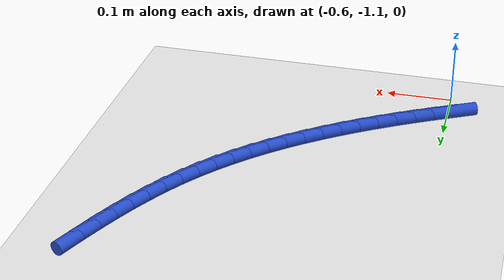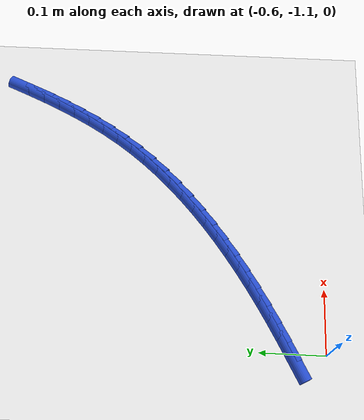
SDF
<sdf version="1.6">
 <world name="default">
  <model name="ground_plane">
   <static>1</static>
   <link name="link">
    <collision name="collision">
     <geometry><plane><normal>0 0 1</normal><size>100 100</size></plane></geometry>
     <surface><friction><ode><mu>100</mu><mu2>50</mu2></ode></friction></surface>
    </collision>
    <visual name="visual">
     <cast_shadows>0</cast_shadows>
     <geometry><plane><normal>0 0 1</normal><size>100 100</size></plane></geometry>
     <material>
      <script><uri>file://media/materials/scripts/gazebo.material</uri><name>Gazebo/WhiteGlow</name></script>
     </material>
    </visual>
   </link>
  </model>
  <model name="line">
   <link name="link_217">
    <pose>-0.6053727925323136 -1.0482092522711892 0.01 0 1.57 0.488285227125159</pose>
    <collision name="collision">
     <geometry><cylinder><radius>0.01</radius><length>0.08</length></cylinder></geometry>
    </collision>
    <visual name="visual">
     <material>
      <script><name>Gazebo/Blue</name><uri>file://media/materials/scripts/gazebo.material</uri></script>
     </material>
     <geometry><cylinder><radius>0.01</radius><length>0.08</length></cylinder></geometry>
    </visual>
   </link>
   <link name="link_218">
    <pose>-0.5788393921331688 -1.0341150409435818 0.01 0 1.57 0.5062036235332281</pose>
    <collision name="collision">
     <geometry><cylinder><radius>0.01</radius><length>0.08</length></cylinder></geometry>
    </collision>
    <visual name="visual">
     <material>
      <script><name>Gazebo/Blue</name><uri>file://media/materials/scripts/gazebo.material</uri></script>
     </material>
     <geometry><cylinder><radius>0.01</radius><length>0.08</length></cylinder></geometry>
    </visual>
   </link>
   <link name="link_219">
    <pose>-0.5525126480380909 -1.0195198873781162 0.01 0 1.57 0.5259337828191522</pose>
    <collision name="collision">
     <geometry><cylinder><radius>0.01</radius><length>0.08</length></cylinder></geometry>
    </collision>
    <visual name="visual">
     <material>
      <script><name>Gazebo/Blue</name><uri>file://media/materials/scripts/gazebo.material</uri></script>
     </material>
     <geometry><cylinder><radius>0.01</radius><length>0.08</length></cylinder></geometry>
    </visual>
   </link>
   <link name="link_220">
    <pose>-0.5264634703184772 -1.004399177957724 0.01 0 1.57 0.5475542821349972</pose>
    <collision name="collision">
     <geometry><cylinder><radius>0.01</radius><length>0.08</length></cylinder></geometry>
    </collision>
    <visual name="visual">
     <material>
      <script><name>Gazebo/Blue</name><uri>file://media/materials/scripts/gazebo.material</uri></script>
     </material>
     <geometry><cylinder><radius>0.01</radius><length>0.08</length></cylinder></geometry>
    </visual>
   </link>
   <link name="link_221">
    <pose>-0.5007627690457277 -0.9887282990653374 0.01 0 1.57 0.5711524050227229</pose>
    <collision name="collision">
     <geometry><cylinder><radius>0.01</radius><length>0.08</length></cylinder></geometry>
    </collision>
    <visual name="visual">
     <material>
      <script><name>Gazebo/Blue</name><uri>file://media/materials/scripts/gazebo.material</uri></script>
     </material>
     <geometry><cylinder><radius>0.01</radius><length>0.08</length></cylinder></geometry>
    </visual>
   </link>
   <link name="link_222">
    <pose>-0.47548145429123967 -0.9724826370838877 0.01 0 1.57 0.596822583573179</pose>
    <collision name="collision">
     <geometry><cylinder><radius>0.01</radius><length>0.08</length></cylinder></geometry>
    </collision>
    <visual name="visual">
     <material>
      <script><name>Gazebo/Blue</name><uri>file://media/materials/scripts/gazebo.material</uri></script>
     </material>
     <geometry><cylinder><radius>0.01</radius><length>0.08</length></cylinder></geometry>
    </visual>
   </link>
   <link name="link_223">
    <pose>-0.4506904361264114 -0.9556375783963067 0.01 0 1.57 0.6246643542988829</pose>
    <collision name="collision">
     <geometry><cylinder><radius>0.01</radius><length>0.08</length></cylinder></geometry>
    </collision>
    <visual name="visual">
     <material>
      <script><name>Gazebo/Blue</name><uri>file://media/materials/scripts/gazebo.material</uri></script>
     </material>
     <geometry><cylinder><radius>0.01</radius><length>0.08</length></cylinder></geometry>
    </visual>
   </link>
   <link name="link_224">
    <pose>-0.4264606246226412 -0.9381685093855259 0.01 0 1.57 0.6547796676236038</pose>
    <collision name="collision">
     <geometry><cylinder><radius>0.01</radius><length>0.08</length></cylinder></geometry>
    </collision>
    <visual name="visual">
     <material>
      <script><name>Gazebo/Blue</name><uri>file://media/materials/scripts/gazebo.material</uri></script>
     </material>
     <geometry><cylinder><radius>0.01</radius><length>0.08</length></cylinder></geometry>
    </visual>
   </link>
   <link name="link_225">
    <pose>-0.4028629298513274 -0.9200508164344772 0.01 0 1.57 0.6872693812039293</pose>
    <collision name="collision">
     <geometry><cylinder><radius>0.01</radius><length>0.08</length></cylinder></geometry>
    </collision>
    <visual name="visual">
     <material>
      <script><name>Gazebo/Blue</name><uri>file://media/materials/scripts/gazebo.material</uri></script>
     </material>
     <geometry><cylinder><radius>0.01</radius><length>0.08</length></cylinder></geometry>
    </visual>
   </link>
   <link name="link_226">
    <pose>-0.3799682618838679 -0.9012598859260919 0.01 0 1.57 0.72222877055389</pose>
    <collision name="collision">
     <geometry><cylinder><radius>0.01</radius><length>0.08</length></cylinder></geometry>
    </collision>
    <visual name="visual">
     <material>
      <script><name>Gazebo/Blue</name><uri>file://media/materials/scripts/gazebo.material</uri></script>
     </material>
     <geometry><cylinder><radius>0.01</radius><length>0.08</length></cylinder></geometry>
    </visual>
   </link>
   <link name="link_227">
    <pose>-0.3578475307916612 -0.8817711042433017 0.01 0 1.57 0.7597419165475715</pose>
    <collision name="collision">
     <geometry><cylinder><radius>0.01</radius><length>0.08</length></cylinder></geometry>
    </collision>
    <visual name="visual">
     <material>
      <script><name>Gazebo/Blue</name><uri>file://media/materials/scripts/gazebo.material</uri></script>
     </material>
     <geometry><cylinder><radius>0.01</radius><length>0.08</length></cylinder></geometry>
    </visual>
   </link>
   <link name="link_228">
    <pose>-0.33657164664610545 -0.8615598577690384 0.01 0 1.57 0.7998748907767793</pose>
    <collision name="collision">
     <geometry><cylinder><radius>0.01</radius><length>0.08</length></cylinder></geometry>
    </collision>
    <visual name="visual">
     <material>
      <script><name>Gazebo/Blue</name><uri>file://media/materials/scripts/gazebo.material</uri></script>
     </material>
     <geometry><cylinder><radius>0.01</radius><length>0.08</length></cylinder></geometry>
    </visual>
   </link>
   <link name="link_229">
    <pose>-0.3162115195185984 -0.8406015328862333 0.01 0 1.57 0.842667770021737</pose>
    <collision name="collision">
     <geometry><cylinder><radius>0.01</radius><length>0.08</length></cylinder></geometry>
    </collision>
    <visual name="visual">
     <material>
      <script><name>Gazebo/Blue</name><uri>file://media/materials/scripts/gazebo.material</uri></script>
     </material>
     <geometry><cylinder><radius>0.01</radius><length>0.08</length></cylinder></geometry>
    </visual>
   </link>
   <link name="link_230">
    <pose>-0.29683805948053943 -0.8188715159778189 0.01 0 1.57 0.8881256815677279</pose>
    <collision name="collision">
     <geometry><cylinder><radius>0.01</radius><length>0.08</length></cylinder></geometry>
    </collision>
    <visual name="visual">
     <material>
      <script><name>Gazebo/Blue</name><uri>file://media/materials/scripts/gazebo.material</uri></script>
     </material>
     <geometry><cylinder><radius>0.01</radius><length>0.08</length></cylinder></geometry>
    </visual>
   </link>
   <link name="link_231">
    <pose>-0.278522176603326 -0.7963451934267262 0.01 0 1.57 0.9361688700046766</pose>
    <collision name="collision">
     <geometry><cylinder><radius>0.01</radius><length>0.08</length></cylinder></geometry>
    </collision>
    <visual name="visual">
     <material>
      <script><name>Gazebo/Blue</name><uri>file://media/materials/scripts/gazebo.material</uri></script>
     </material>
     <geometry><cylinder><radius>0.01</radius><length>0.08</length></cylinder></geometry>
    </visual>
   </link>
   <link name="link_232">
    <pose>-0.2613337589874166 -0.7729985412258068 0.01 0 1.57 0.9839941503702341</pose>
    <collision name="collision">
     <geometry><cylinder><radius>0.01</radius><length>0.08</length></cylinder></geometry>
    </collision>
    <visual name="visual">
     <material>
      <script><name>Gazebo/Blue</name><uri>file://media/materials/scripts/gazebo.material</uri></script>
     </material>
     <geometry><cylinder><radius>0.01</radius><length>0.08</length></cylinder></geometry>
    </visual>
   </link>
   <link name="link_233">
    <pose>-0.24527449660971157 -0.7488468811933185 0.01 0 1.57 1.0270876780737241</pose>
    <collision name="collision">
     <geometry><cylinder><radius>0.01</radius><length>0.08</length></cylinder></geometry>
    </collision>
    <visual name="visual">
     <material>
      <script><name>Gazebo/Blue</name><uri>file://media/materials/scripts/gazebo.material</uri></script>
     </material>
     <geometry><cylinder><radius>0.01</radius><length>0.08</length></cylinder></geometry>
    </visual>
   </link>
   <link name="link_234">
    <pose>-0.2302362143440685 -0.72396892007568 0.01 0 1.57 1.0649635936383968</pose>
    <collision name="collision">
     <geometry><cylinder><radius>0.01</radius><length>0.08</length></cylinder></geometry>
    </collision>
    <visual name="visual">
     <material>
      <script><name>Gazebo/Blue</name><uri>file://media/materials/scripts/gazebo.material</uri></script>
     </material>
     <geometry><cylinder><radius>0.01</radius><length>0.08</length></cylinder></geometry>
    </visual>
   </link>
   <link name="link_235">
    <pose>-0.21610078304460548 -0.6984491074330772 0.01 0 1.57 1.0976199163733498</pose>
    <collision name="collision">
     <geometry><cylinder><radius>0.01</radius><length>0.08</length></cylinder></geometry>
    </collision>
    <visual name="visual">
     <material>
      <script><name>Gazebo/Blue</name><uri>file://media/materials/scripts/gazebo.material</uri></script>
     </material>
     <geometry><cylinder><radius>0.01</radius><length>0.08</length></cylinder></geometry>
    </visual>
   </link>
   <link name="link_236">
    <pose>-0.20275007356543998 -0.6723718928256938 0.01 0 1.57 1.1251135443516174</pose>
    <collision name="collision">
     <geometry><cylinder><radius>0.01</radius><length>0.08</length></cylinder></geometry>
    </collision>
    <visual name="visual">
     <material>
      <script><name>Gazebo/Blue</name><uri>file://media/materials/scripts/gazebo.material</uri></script>
     </material>
     <geometry><cylinder><radius>0.01</radius><length>0.08</length></cylinder></geometry>
    </visual>
   </link>
   <link name="link_237">
    <pose>-0.19006595676069057 -0.6458217258137164 0.01 0 1.57 1.1475333896388396</pose>
    <collision name="collision">
     <geometry><cylinder><radius>0.01</radius><length>0.08</length></cylinder></geometry>
    </collision>
    <visual name="visual">
     <material>
      <script><name>Gazebo/Blue</name><uri>file://media/materials/scripts/gazebo.material</uri></script>
     </material>
     <geometry><cylinder><radius>0.01</radius><length>0.08</length></cylinder></geometry>
    </visual>
   </link>
   <link name="link_238">
    <pose>-0.17793030348447497 -0.6188830559573296 0.01 0 1.57 1.1649787262100426</pose>
    <collision name="collision">
     <geometry><cylinder><radius>0.01</radius><length>0.08</length></cylinder></geometry>
    </collision>
    <visual name="visual">
     <material>
      <script><name>Gazebo/Blue</name><uri>file://media/materials/scripts/gazebo.material</uri></script>
     </material>
     <geometry><cylinder><radius>0.01</radius><length>0.08</length></cylinder></geometry>
    </visual>
   </link>
  </model>
 </world>
</sdf>
